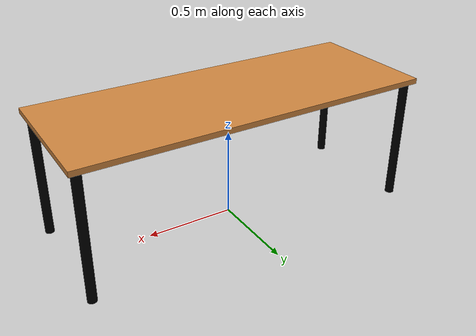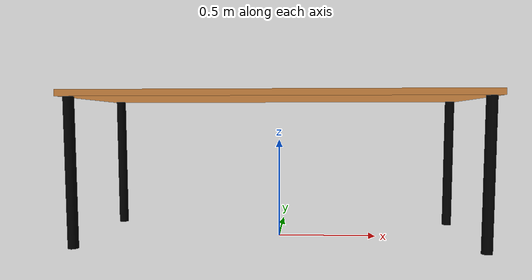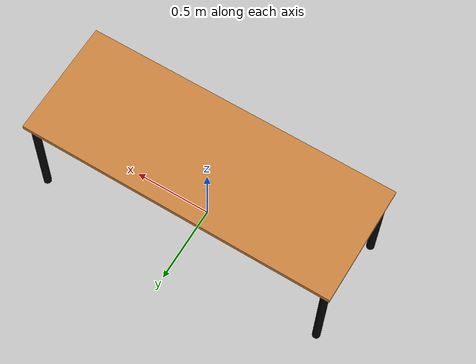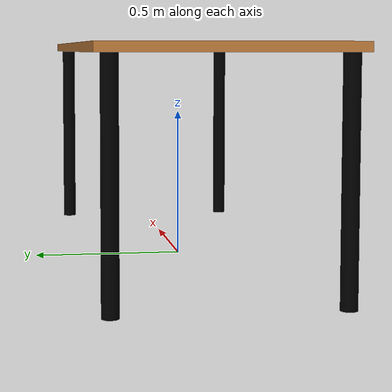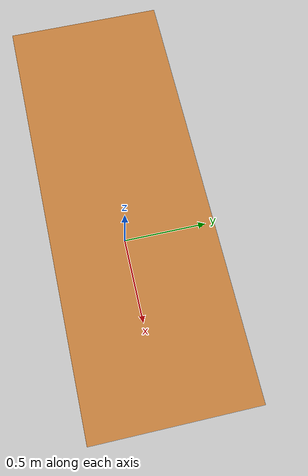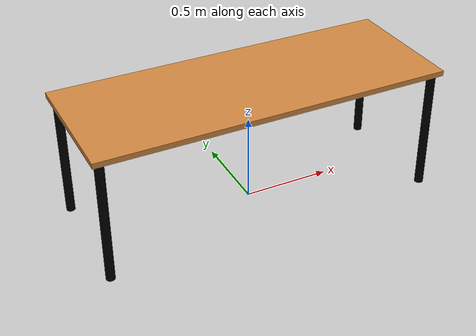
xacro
<?xml version="1.0"?>

<robot name="mesa" xmlns:xacro="http://www.ros.org/wiki/xacro">

<xacro:property name="altura" value="0.71" />

<link name="world" />

<joint name="mesa" type="floating">
  <parent link="world"/>
  <child link="mesa_link"/>
  <origin xyz="0 0 0" rpy="0 0 0" />
</joint>

<link name="mesa_link">
  <visual>
    <geometry>
      <box size="2 0.75 0.03" />
    </geometry>
    <origin rpy="0 0 0" xyz="0 0 ${(0.03/2)+altura}" />
      <material name="wood">
		<color rgba="${205/255} ${133/255} ${63/255} 1" />
    </material>
  </visual>
  <collision>
    <origin rpy="0 0 0" xyz="0 0 ${(0.03/2)+altura}" />
    <geometry>
      <box size="2 0.75 0.03" />
    </geometry>
  </collision>
  <inertial>
    <origin rpy="0 0 0" xyz="0 0 ${(0.03/2)+altura}" />
    <mass value="5" />
      <inertia ixx="0.25" ixy="0.0" ixz="0.0" iyy="0.25" iyz="0.0" izz="0.25"/>
  </inertial>
</link>

<xacro:macro name="pata" params="id refx refy">
<joint name="pata_${id}" type="fixed">
  <parent link="mesa_link"/>
  <child link="pata_${id}_link"/>
  <origin xyz="${refx*((2/2)-0.045)} ${refy*((0.75/2)-0.045)} 0" rpy="0 0 0" />
</joint>

<link name="pata_${id}_link">
  <visual>
    <geometry>
      <cylinder radius="0.025" length="${altura}" />
    </geometry>
    <origin rpy="0 0 0" xyz="0 0 ${0.71/2}" />
    <material name="black">
      <color rgba="0 0 0 1" />
    </material>
  </visual>
  <collision>
    <origin rpy="0 0 0" xyz="0 0 ${altura/2}" />
    <geometry>
      <cylinder radius="0.025" length="${altura}" />
    </geometry>
  </collision>
  <inertial>
    <origin rpy="0 0 0" xyz="0 0 ${altura/2}" />
    <mass value="3" />
      <inertia ixx="0.1" ixy="0.0" ixz="0.0" iyy="0.1" iyz="0.0" izz="0.1"/>
  </inertial>
</link>
</xacro:macro>

<xacro:pata id="1" refx="1" refy="1"/>
<xacro:pata id="2" refx="1" refy="-1"/>
<xacro:pata id="3" refx="-1" refy="-1"/>
<xacro:pata id="4" refx="-1" refy="1"/>

<gazebo reference="mesa_link">
  <material>objetos_fer/LightWood</material>
  <mu1>1</mu1>
  <mu2>1</mu2>
  <selfCollide>true</selfCollide>
  <turnGravityOff>false</turnGravityOff>
</gazebo>

<xacro:macro name="gazebo_pata" params="id">
<gazebo reference="pata_${id}_link">
  <material>objetos_fer/Black</material>
  <mu1>1</mu1>
  <mu2>1</mu2>
  <selfCollide>true</selfCollide>
  <gravity>true</gravity>
</gazebo>
</xacro:macro>

<xacro:gazebo_pata id="1"/>
<xacro:gazebo_pata id="2"/>
<xacro:gazebo_pata id="3"/>
<xacro:gazebo_pata id="4"/>

</robot>
